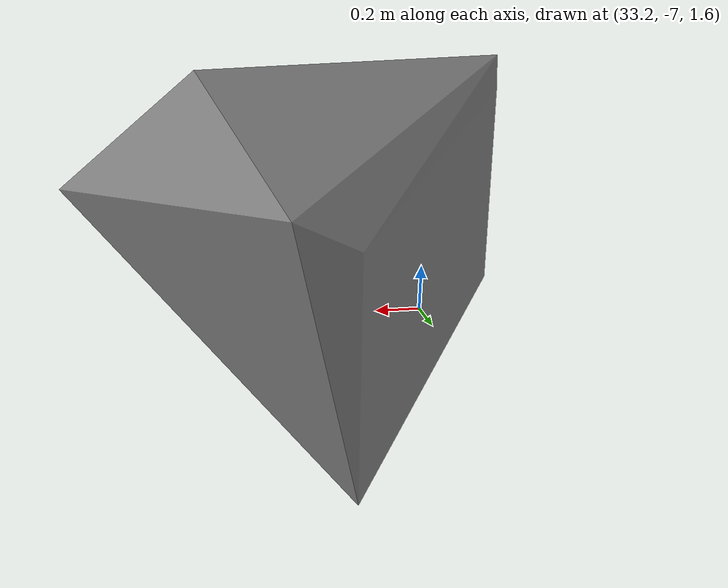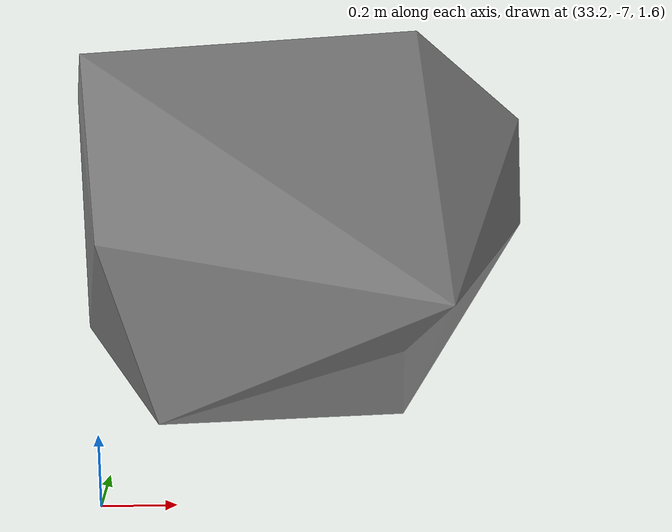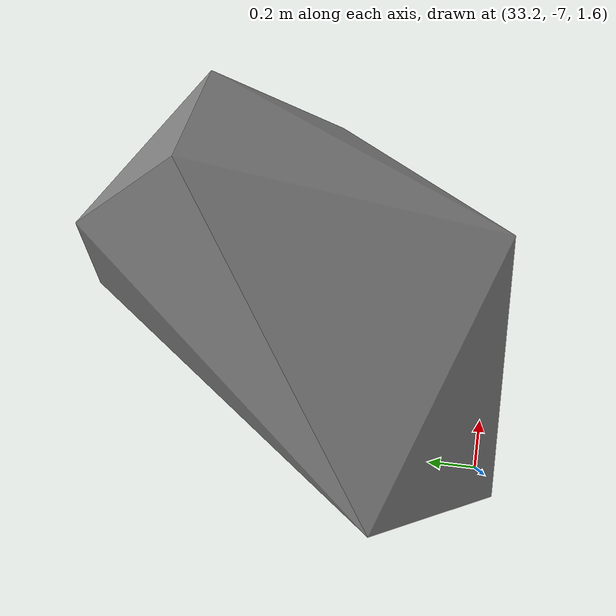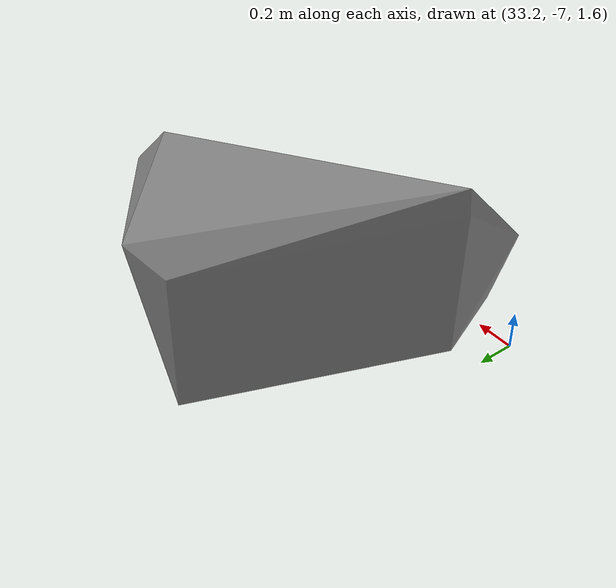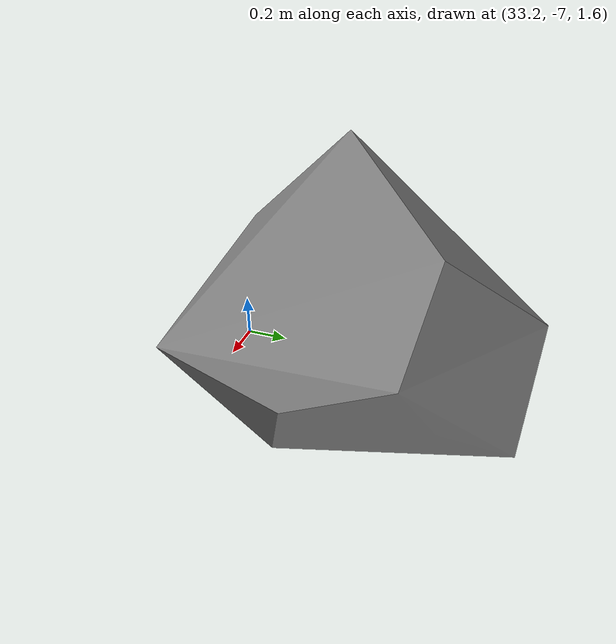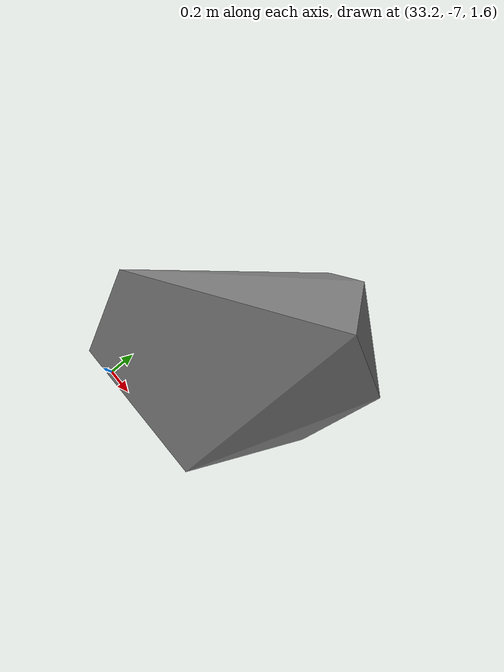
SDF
<sdf version="1.8">
 <model name="blue_mountains">
  <static>true</static>
  <link name="forest_23_19">
   <collision name="tree_90_trunk">
    <pose>33.35616 -6.020526 0.1229802 0 0 2.484797</pose>
    <geometry><cylinder><radius>0.06409805</radius><length>3.181611</length></cylinder></geometry>
   </collision>
   <collision name="plant_90_crown_0">
    <pose>33.37646 -6.03618 -1.467826 0 0 2.484797</pose>
    <geometry>
     <mesh>
      <uri>model://blue_mountains/meshes/canopy_7_0.dae</uri>
      <scale>0.2563922 0.2563922 0.2392137</scale>
     </mesh>
    </geometry>
   </collision>
   <collision name="plant_90_crown_1">
    <pose>33.37646 -6.03618 -1.467826 0 0 2.484797</pose>
    <geometry>
     <mesh>
      <uri>model://blue_mountains/meshes/canopy_7_1.dae</uri>
      <scale>0.2563922 0.2563922 0.2392137</scale>
     </mesh>
    </geometry>
   </collision>
   <collision name="tree_102_trunk">
    <pose>34.98132 -1.428279 0.05534384 0 0 0.7137524</pose>
    <geometry><cylinder><radius>0.05568732</radius><length>2.839263</length></cylinder></geometry>
   </collision>
   <collision name="plant_102_crown_0">
    <pose>34.96449 -1.442862 -1.364288 0 0 0.7137524</pose>
    <geometry>
     <mesh>
      <uri>model://blue_mountains/meshes/canopy_8_0.dae</uri>
      <scale>0.2227493 0.2227493 0.2112667</scale>
     </mesh>
    </geometry>
   </collision>
   <collision name="plant_102_crown_1">
    <pose>34.96449 -1.442862 -1.364288 0 0 0.7137524</pose>
    <geometry>
     <mesh>
      <uri>model://blue_mountains/meshes/canopy_8_1.dae</uri>
      <scale>0.2227493 0.2227493 0.2112667</scale>
     </mesh>
    </geometry>
   </collision>
   <collision name="tree_160_trunk">
    <pose>36.62294 -8.039037 0.1984273 0 0 -0.5227497</pose>
    <geometry><cylinder><radius>0.0663473</radius><length>3.589975</length></cylinder></geometry>
   </collision>
   <collision name="plant_160_crown_0">
    <pose>36.59994 -8.025787 -1.59656 0 0 -0.5227497</pose>
    <geometry>
     <mesh>
      <uri>model://blue_mountains/meshes/canopy_3_0.dae</uri>
      <scale>0.2653892 0.2653892 0.2668979</scale>
     </mesh>
    </geometry>
   </collision>
   <collision name="plant_160_crown_1">
    <pose>36.59994 -8.025787 -1.59656 0 0 -0.5227497</pose>
    <geometry>
     <mesh>
      <uri>model://blue_mountains/meshes/canopy_3_1.dae</uri>
      <scale>0.2653892 0.2653892 0.2668979</scale>
     </mesh>
    </geometry>
   </collision>
   <collision name="tree_205_trunk">
    <pose>38.54552 -6.562577 -0.6734376 0 0 -2.200369</pose>
    <geometry><cylinder><radius>0.03729274</radius><length>1.77881</length></cylinder></geometry>
   </collision>
   <collision name="plant_205_crown_0">
    <pose>38.5543 -6.55052 -1.562843 0 0 -2.200369</pose>
    <geometry>
     <mesh><uri>model://blue_mountains/meshes/canopy_4_0.dae</uri><scale>0.149171 0.149171 0.132551</scale></mesh>
    </geometry>
   </collision>
   <collision name="plant_205_crown_1">
    <pose>38.5543 -6.55052 -1.562843 0 0 -2.200369</pose>
    <geometry>
     <mesh><uri>model://blue_mountains/meshes/canopy_4_1.dae</uri><scale>0.149171 0.149171 0.132551</scale></mesh>
    </geometry>
   </collision>
   <collision name="tree_227_trunk">
    <pose>32.06232 -5.489201 0.5367734 0 0 -2.79761</pose>
    <geometry><cylinder><radius>0.0666871</radius><length>3.994039</length></cylinder></geometry>
   </collision>
   <collision name="plant_227_crown_0">
    <pose>32.08744 -5.480206 -1.460246 0 0 -2.79761</pose>
    <geometry>
     <mesh>
      <uri>model://blue_mountains/meshes/canopy_5_0.dae</uri>
      <scale>0.2667484 0.2667484 0.3002101</scale>
     </mesh>
    </geometry>
   </collision>
   <collision name="plant_227_crown_1">
    <pose>32.08744 -5.480206 -1.460246 0 0 -2.79761</pose>
    <geometry>
     <mesh>
      <uri>model://blue_mountains/meshes/canopy_5_1.dae</uri>
      <scale>0.2667484 0.2667484 0.3002101</scale>
     </mesh>
    </geometry>
   </collision>
   <collision name="tree_264_trunk">
    <pose>32.45113 -8.030477 0.6837361 0 0 -3.069855</pose>
    <geometry><cylinder><radius>0.0689035</radius><length>4.264415</length></cylinder></geometry>
   </collision>
   <collision name="plant_264_crown_0">
    <pose>32.47862 -8.028502 -1.448472 0 0 -3.069855</pose>
    <geometry>
     <mesh><uri>model://blue_mountains/meshes/canopy_7_0.dae</uri><scale>0.275614 0.275614 0.3206258</scale></mesh>
    </geometry>
   </collision>
   <collision name="plant_264_crown_1">
    <pose>32.47862 -8.028502 -1.448472 0 0 -3.069855</pose>
    <geometry>
     <mesh><uri>model://blue_mountains/meshes/canopy_7_1.dae</uri><scale>0.275614 0.275614 0.3206258</scale></mesh>
    </geometry>
   </collision>
   <collision name="tree_288_trunk">
    <pose>32.3679 -4.281405 -0.1717519 0 0 2.601666</pose>
    <geometry><cylinder><radius>0.05052146</radius><length>2.602024</length></cylinder></geometry>
   </collision>
   <collision name="plant_288_crown_0">
    <pose>32.38524 -4.291794 -1.472764 0 0 2.601666</pose>
    <geometry>
     <mesh>
      <uri>model://blue_mountains/meshes/canopy_1_0.dae</uri>
      <scale>0.2020858 0.2020858 0.1921877</scale>
     </mesh>
    </geometry>
   </collision>
   <collision name="plant_288_crown_1">
    <pose>32.38524 -4.291794 -1.472764 0 0 2.601666</pose>
    <geometry>
     <mesh>
      <uri>model://blue_mountains/meshes/canopy_1_1.dae</uri>
      <scale>0.2020858 0.2020858 0.1921877</scale>
     </mesh>
    </geometry>
   </collision>
   <collision name="tree_295_trunk">
    <pose>39.62521 -4.565669 0.3011569 0 0 1.721715</pose>
    <geometry><cylinder><radius>0.07106225</radius><length>3.620279</length></cylinder></geometry>
   </collision>
   <collision name="plant_295_crown_0">
    <pose>39.62948 -4.593771 -1.508983 0 0 1.721715</pose>
    <geometry>
     <mesh><uri>model://blue_mountains/meshes/canopy_0_0.dae</uri><scale>0.284249 0.284249 0.2669935</scale></mesh>
    </geometry>
   </collision>
   <collision name="plant_295_crown_1">
    <pose>39.62948 -4.593771 -1.508983 0 0 1.721715</pose>
    <geometry>
     <mesh><uri>model://blue_mountains/meshes/canopy_0_1.dae</uri><scale>0.284249 0.284249 0.2669935</scale></mesh>
    </geometry>
   </collision>
   <collision name="tree_345_trunk">
    <pose>38.31014 -0.5168905 0.0995482 0 0 0.302135</pose>
    <geometry><cylinder><radius>0.0456154</radius><length>2.688039</length></cylinder></geometry>
   </collision>
   <collision name="plant_345_crown_0">
    <pose>38.29272 -0.5223198 -1.244471 0 0 0.302135</pose>
    <geometry>
     <mesh>
      <uri>model://blue_mountains/meshes/canopy_6_0.dae</uri>
      <scale>0.1824616 0.1824616 0.1981411</scale>
     </mesh>
    </geometry>
   </collision>
   <collision name="plant_345_crown_1">
    <pose>38.29272 -0.5223198 -1.244471 0 0 0.302135</pose>
    <geometry>
     <mesh>
      <uri>model://blue_mountains/meshes/canopy_6_1.dae</uri>
      <scale>0.1824616 0.1824616 0.1981411</scale>
     </mesh>
    </geometry>
   </collision>
   <collision name="tree_351_trunk">
    <pose>31.98892 -5.563957 0.1988722 0 0 -2.863052</pose>
    <geometry><cylinder><radius>0.05348323</radius><length>3.316138</length></cylinder></geometry>
   </collision>
   <collision name="plant_351_crown_0">
    <pose>32.00949 -5.558075 -1.459197 0 0 -2.863052</pose>
    <geometry>
     <mesh>
      <uri>model://blue_mountains/meshes/canopy_7_0.dae</uri>
      <scale>0.2139329 0.2139329 0.2493283</scale>
     </mesh>
    </geometry>
   </collision>
   <collision name="plant_351_crown_1">
    <pose>32.00949 -5.558075 -1.459197 0 0 -2.863052</pose>
    <geometry>
     <mesh>
      <uri>model://blue_mountains/meshes/canopy_7_1.dae</uri>
      <scale>0.2139329 0.2139329 0.2493283</scale>
     </mesh>
    </geometry>
   </collision>
   <collision name="tree_357_trunk">
    <pose>37.73476 -8.165947 -0.3990962 0 0 1.570435</pose>
    <geometry><cylinder><radius>0.0452625</radius><length>2.442793</length></cylinder></geometry>
   </collision>
   <collision name="plant_357_crown_0">
    <pose>37.73475 -8.184052 -1.620493 0 0 1.570435</pose>
    <geometry>
     <mesh><uri>model://blue_mountains/meshes/canopy_3_0.dae</uri><scale>0.18105 0.18105 0.1816103</scale></mesh>
    </geometry>
   </collision>
   <collision name="plant_357_crown_1">
    <pose>37.73475 -8.184052 -1.620493 0 0 1.570435</pose>
    <geometry>
     <mesh><uri>model://blue_mountains/meshes/canopy_3_1.dae</uri><scale>0.18105 0.18105 0.1816103</scale></mesh>
    </geometry>
   </collision>
   <collision name="tree_389_trunk">
    <pose>34.2976 -1.808102 -0.02957381 0 0 -0.1189383</pose>
    <geometry><cylinder><radius>0.0440928</radius><length>2.731136</length></cylinder></geometry>
   </collision>
   <collision name="plant_389_crown_0">
    <pose>34.28008 -1.806009 -1.395142 0 0 -0.1189383</pose>
    <geometry>
     <mesh>
      <uri>model://blue_mountains/meshes/canopy_8_0.dae</uri>
      <scale>0.1763712 0.1763712 0.203221</scale>
     </mesh>
    </geometry>
   </collision>
   <collision name="plant_389_crown_1">
    <pose>34.28008 -1.806009 -1.395142 0 0 -0.1189383</pose>
    <geometry>
     <mesh>
      <uri>model://blue_mountains/meshes/canopy_8_1.dae</uri>
      <scale>0.1763712 0.1763712 0.203221</scale>
     </mesh>
    </geometry>
   </collision>
   <collision name="tree_390_trunk">
    <pose>38.56658 -2.69348 0.6914831 0 0 1.24267</pose>
    <geometry><cylinder><radius>0.07021552</radius><length>4.248429</length></cylinder></geometry>
   </collision>
   <collision name="plant_390_crown_0">
    <pose>38.55753 -2.720068 -1.432731 0 0 1.24267</pose>
    <geometry>
     <mesh>
      <uri>model://blue_mountains/meshes/canopy_0_0.dae</uri>
      <scale>0.2808621 0.2808621 0.3133192</scale>
     </mesh>
    </geometry>
   </collision>
   <collision name="plant_390_crown_1">
    <pose>38.55753 -2.720068 -1.432731 0 0 1.24267</pose>
    <geometry>
     <mesh>
      <uri>model://blue_mountains/meshes/canopy_0_1.dae</uri>
      <scale>0.2808621 0.2808621 0.3133192</scale>
     </mesh>
    </geometry>
   </collision>
   <collision name="tree_464_trunk">
    <pose>30.42549 -3.620189 -0.5761639 0 0 1.066611</pose>
    <geometry><cylinder><radius>0.03678925</radius><length>1.900146</length></cylinder></geometry>
   </collision>
   <collision name="plant_464_crown_0">
    <pose>30.41838 -3.633074 -1.526237 0 0 1.066611</pose>
    <geometry>
     <mesh><uri>model://blue_mountains/meshes/canopy_5_0.dae</uri><scale>0.147157 0.147157 0.1428237</scale></mesh>
    </geometry>
   </collision>
   <collision name="plant_464_crown_1">
    <pose>30.41838 -3.633074 -1.526237 0 0 1.066611</pose>
    <geometry>
     <mesh><uri>model://blue_mountains/meshes/canopy_5_1.dae</uri><scale>0.147157 0.147157 0.1428237</scale></mesh>
    </geometry>
   </collision>
   <visual name="forest_visual">
    <geometry><mesh><uri>model://blue_mountains/meshes/forest_23_19.dae</uri></mesh></geometry>
    <cast_shadows>false</cast_shadows>
   </visual>
  </link>
 </model>
</sdf>
